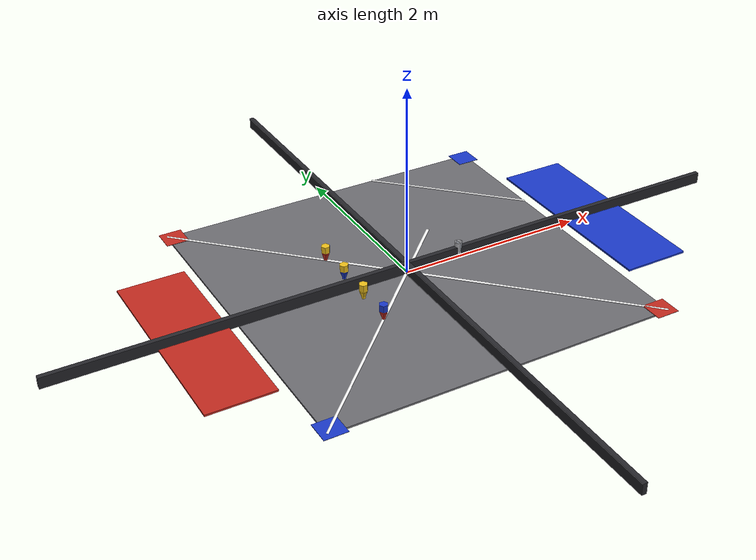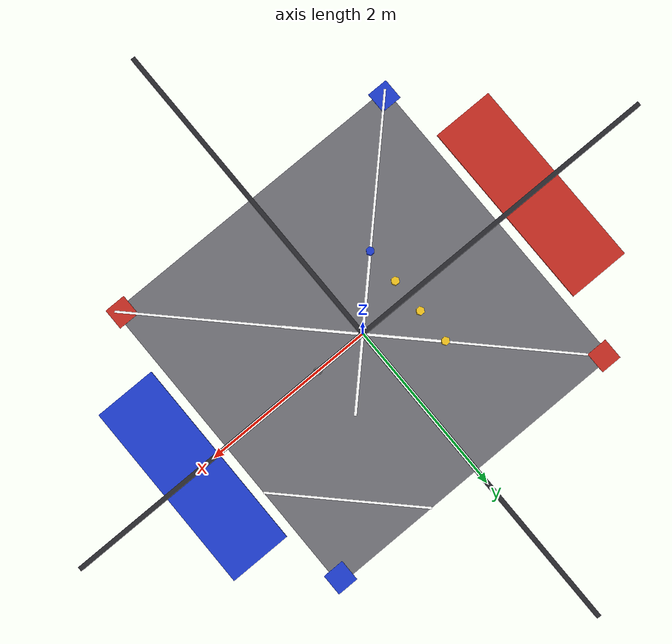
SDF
<?xml version="1.0" ?>
<sdf version="1.7">
  <world name="block_test">
    <scene>
      <ambient>0.45 0.45 0.5 1</ambient>
      <background>0.2 0.2 0.25 1</background>
      <shadows>true</shadows>
    </scene>
    <light name="sun" type="directional">
      <pose>0 0 3 0 0 0</pose>
      <diffuse>0.9 0.9 0.9 1</diffuse>
      <specular>0.2 0.2 0.2 1</specular>
      <direction>-0.5 0.1 -1</direction>
    </light>

    <include>
      <uri>model://override-field</uri>
      <pose>0 0 0 0 0 0</pose>
    </include>

    <!-- one of each scoring element -->
    <include>
      <name>pin_ry_1</name>
      <uri>model://pin-ry</uri>
      <pose>-0.6 0.6 0.01 0 0 0</pose>
    </include>
    <include>
      <name>pin_by_1</name>
      <uri>model://pin-by</uri>
      <pose>-0.6 0.2 0.01 0 0 0</pose>
    </include>
    <include>
      <name>pin_yy_1</name>
      <uri>model://pin-yy</uri>
      <pose>-0.6 -0.2 0.01 0 0 0</pose>
    </include>
    <include>
      <name>pin_rb_1</name>
      <uri>model://pin-rb</uri>
      <pose>-0.6 -0.6 0.01 0 0 0</pose>
    </include>
    <include>
      <name>cup_1</name>
      <uri>model://cup</uri>
      <pose>0.6 0.0 0.01 0 0 0</pose>
    </include>
  </world>
</sdf>

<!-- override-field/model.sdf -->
<sdf version="1.7">
  <model name="override-field">
    <static>true</static>
    <link name="body">
      <pose>0 0 0 0 0 0</pose>
            <visual name="v_0_0">
        <pose>0 0 -0.01 0.0 0.0 0.0</pose>
        <geometry><box><size>3.6576 3.6576 0.02</size></box></geometry>
        <material>
        <ambient>0.42 0.42 0.44 1</ambient>
        <diffuse>0.42 0.42 0.44 1</diffuse>
        <specular>0.1 0.1 0.1 1.0</specular>
        <emissive>0 0 0 1</emissive>
      </material>
      </visual>
      <collision name="c_0_0">
        <pose>0 0 -0.01 0.0 0.0 0.0</pose>
        <geometry><box><size>3.6576 3.6576 0.02</size></box></geometry>
        <surface><friction><ode><mu>0.8</mu><mu2>0.8</mu2></ode></friction></surface>
      </collision>

      <visual name="v_-1.8538_0">
        <pose>-1.8538 0 0.06 0.0 0.0 0.0</pose>
        <geometry><box><size>3.7576 0.05 0.12</size></box></geometry>
        <material>
        <ambient>0.15 0.15 0.17 1</ambient>
        <diffuse>0.15 0.15 0.17 1</diffuse>
        <specular>0.1 0.1 0.1 1.0</specular>
        <emissive>0 0 0 1</emissive>
      </material>
      </visual>
      <collision name="c_-1.8538_0">
        <pose>-1.8538 0 0.06 0.0 0.0 0.0</pose>
        <geometry><box><size>3.7576 0.05 0.12</size></box></geometry>
        <surface><friction><ode><mu>0.8</mu><mu2>0.8</mu2></ode></friction></surface>
      </collision>

      <visual name="v_0_-1.8538">
        <pose>0 -1.8538 0.06 0.0 0.0 0.0</pose>
        <geometry><box><size>0.05 3.7576 0.12</size></box></geometry>
        <material>
        <ambient>0.15 0.15 0.17 1</ambient>
        <diffuse>0.15 0.15 0.17 1</diffuse>
        <specular>0.1 0.1 0.1 1.0</specular>
        <emissive>0 0 0 1</emissive>
      </material>
      </visual>
      <collision name="c_0_-1.8538">
        <pose>0 -1.8538 0.06 0.0 0.0 0.0</pose>
        <geometry><box><size>0.05 3.7576 0.12</size></box></geometry>
        <surface><friction><ode><mu>0.8</mu><mu2>0.8</mu2></ode></friction></surface>
      </collision>

      <visual name="v_1.8538_0">
        <pose>1.8538 0 0.06 0.0 0.0 0.0</pose>
        <geometry><box><size>3.7576 0.05 0.12</size></box></geometry>
        <material>
        <ambient>0.15 0.15 0.17 1</ambient>
        <diffuse>0.15 0.15 0.17 1</diffuse>
        <specular>0.1 0.1 0.1 1.0</specular>
        <emissive>0 0 0 1</emissive>
      </material>
      </visual>
      <collision name="c_1.8538_0">
        <pose>1.8538 0 0.06 0.0 0.0 0.0</pose>
        <geometry><box><size>3.7576 0.05 0.12</size></box></geometry>
        <surface><friction><ode><mu>0.8</mu><mu2>0.8</mu2></ode></friction></surface>
      </collision>

      <visual name="v_0_1.8538">
        <pose>0 1.8538 0.06 0.0 0.0 0.0</pose>
        <geometry><box><size>0.05 3.7576 0.12</size></box></geometry>
        <material>
        <ambient>0.15 0.15 0.17 1</ambient>
        <diffuse>0.15 0.15 0.17 1</diffuse>
        <specular>0.1 0.1 0.1 1.0</specular>
        <emissive>0 0 0 1</emissive>
      </material>
      </visual>
      <collision name="c_0_1.8538">
        <pose>0 1.8538 0.06 0.0 0.0 0.0</pose>
        <geometry><box><size>0.05 3.7576 0.12</size></box></geometry>
        <surface><friction><ode><mu>0.8</mu><mu2>0.8</mu2></ode></friction></surface>
      </collision>

      <visual name="v_-2.2788_0">
        <pose>-2.2788 0 0.01 0.0 0.0 0.0</pose>
        <geometry><box><size>0.7 2.2 0.02</size></box></geometry>
        <material>
        <ambient>0.75 0.16 0.12 1</ambient>
        <diffuse>0.75 0.16 0.12 1</diffuse>
        <specular>0.1 0.1 0.1 1.0</specular>
        <emissive>0 0 0 1</emissive>
      </material>
      </visual>
      <collision name="c_-2.2788_0">
        <pose>-2.2788 0 0.01 0.0 0.0 0.0</pose>
        <geometry><box><size>0.7 2.2 0.02</size></box></geometry>
        <surface><friction><ode><mu>0.8</mu><mu2>0.8</mu2></ode></friction></surface>
      </collision>

      <visual name="v_2.2788_0">
        <pose>2.2788 0 0.01 0.0 0.0 0.0</pose>
        <geometry><box><size>0.7 2.2 0.02</size></box></geometry>
        <material>
        <ambient>0.1 0.22 0.78 1</ambient>
        <diffuse>0.1 0.22 0.78 1</diffuse>
        <specular>0.1 0.1 0.1 1.0</specular>
        <emissive>0 0 0 1</emissive>
      </material>
      </visual>
      <collision name="c_2.2788_0">
        <pose>2.2788 0 0.01 0.0 0.0 0.0</pose>
        <geometry><box><size>0.7 2.2 0.02</size></box></geometry>
        <surface><friction><ode><mu>0.8</mu><mu2>0.8</mu2></ode></friction></surface>
      </collision>

      <visual name="tape_0.3_0.3">
        <pose>0.3 0.3 0.005 0 0 0.7854</pose>
        <geometry><box><size>0.848528137423857 0.03 0.005</size></box></geometry>
        <material>
        <ambient>0.96 0.96 0.96 1</ambient>
        <diffuse>0.96 0.96 0.96 1</diffuse>
        <specular>0.1 0.1 0.1 1.0</specular>
        <emissive>0.05 0.05 0.05 1</emissive>
      </material>
      </visual>

      <visual name="tape_-0.3_0.3">
        <pose>-0.3 0.3 0.005 0 0 -0.7854</pose>
        <geometry><box><size>0.848528137423857 0.03 0.005</size></box></geometry>
        <material>
        <ambient>0.96 0.96 0.96 1</ambient>
        <diffuse>0.96 0.96 0.96 1</diffuse>
        <specular>0.1 0.1 0.1 1.0</specular>
        <emissive>0.05 0.05 0.05 1</emissive>
      </material>
      </visual>

      <visual name="tape_-0.3_-0.3">
        <pose>-0.3 -0.3 0.005 0 0 0.7854</pose>
        <geometry><box><size>0.848528137423857 0.03 0.005</size></box></geometry>
        <material>
        <ambient>0.96 0.96 0.96 1</ambient>
        <diffuse>0.96 0.96 0.96 1</diffuse>
        <specular>0.1 0.1 0.1 1.0</specular>
        <emissive>0.05 0.05 0.05 1</emissive>
      </material>
      </visual>

      <visual name="tape_0.3_-0.3">
        <pose>0.3 -0.3 0.005 0 0 -0.7854</pose>
        <geometry><box><size>0.848528137423857 0.03 0.005</size></box></geometry>
        <material>
        <ambient>0.96 0.96 0.96 1</ambient>
        <diffuse>0.96 0.96 0.96 1</diffuse>
        <specular>0.1 0.1 0.1 1.0</specular>
        <emissive>0.05 0.05 0.05 1</emissive>
      </material>
      </visual>

      <visual name="tape_-1.2144_1.2144">
        <pose>-1.2144 1.2144 0.005 0 0 -0.7854</pose>
        <geometry><box><size>1.7377856254440596 0.025 0.005</size></box></geometry>
        <material>
        <ambient>0.96 0.96 0.96 1</ambient>
        <diffuse>0.96 0.96 0.96 1</diffuse>
        <specular>0.1 0.1 0.1 1.0</specular>
        <emissive>0.05 0.05 0.05 1</emissive>
      </material>
      </visual>

      <visual name="tape_1.2144_1.2144">
        <pose>1.2144 1.2144 0.005 0 0 2.3562</pose>
        <geometry><box><size>1.7377856254440596 0.025 0.005</size></box></geometry>
        <material>
        <ambient>0.96 0.96 0.96 1</ambient>
        <diffuse>0.96 0.96 0.96 1</diffuse>
        <specular>0.1 0.1 0.1 1.0</specular>
        <emissive>0.05 0.05 0.05 1</emissive>
      </material>
      </visual>

      <visual name="tape_-1.2144_-1.2144">
        <pose>-1.2144 -1.2144 0.005 0 0 0.7854</pose>
        <geometry><box><size>1.7377856254440596 0.025 0.005</size></box></geometry>
        <material>
        <ambient>0.96 0.96 0.96 1</ambient>
        <diffuse>0.96 0.96 0.96 1</diffuse>
        <specular>0.1 0.1 0.1 1.0</specular>
        <emissive>0.05 0.05 0.05 1</emissive>
      </material>
      </visual>

      <visual name="tape_1.2144_-1.2144">
        <pose>1.2144 -1.2144 0.005 0 0 2.3562</pose>
        <geometry><box><size>1.7377856254440596 0.025 0.005</size></box></geometry>
        <material>
        <ambient>0.96 0.96 0.96 1</ambient>
        <diffuse>0.96 0.96 0.96 1</diffuse>
        <specular>0.1 0.1 0.1 1.0</specular>
        <emissive>0.05 0.05 0.05 1</emissive>
      </material>
      </visual>

      <visual name="tape_1.773936_1.773936">
        <pose>1.773936 1.773936 0.005 0 0 0.0</pose>
        <geometry><box><size>0.24 0.24 0.005</size></box></geometry>
        <material>
        <ambient>0.1 0.22 0.78 1</ambient>
        <diffuse>0.1 0.22 0.78 1</diffuse>
        <specular>0.1 0.1 0.1 1.0</specular>
        <emissive>0 0 0 1</emissive>
      </material>
      </visual>

      <visual name="tape_1.773936_-1.773936">
        <pose>1.773936 -1.773936 0.005 0 0 0.0</pose>
        <geometry><box><size>0.24 0.24 0.005</size></box></geometry>
        <material>
        <ambient>0.75 0.16 0.12 1</ambient>
        <diffuse>0.75 0.16 0.12 1</diffuse>
        <specular>0.1 0.1 0.1 1.0</specular>
        <emissive>0 0 0 1</emissive>
      </material>
      </visual>

      <visual name="tape_-1.773936_-1.773936">
        <pose>-1.773936 -1.773936 0.005 0 0 0.0</pose>
        <geometry><box><size>0.24 0.24 0.005</size></box></geometry>
        <material>
        <ambient>0.1 0.22 0.78 1</ambient>
        <diffuse>0.1 0.22 0.78 1</diffuse>
        <specular>0.1 0.1 0.1 1.0</specular>
        <emissive>0 0 0 1</emissive>
      </material>
      </visual>

      <visual name="tape_-1.773936_1.773936">
        <pose>-1.773936 1.773936 0.005 0 0 0.0</pose>
        <geometry><box><size>0.24 0.24 0.005</size></box></geometry>
        <material>
        <ambient>0.75 0.16 0.12 1</ambient>
        <diffuse>0.75 0.16 0.12 1</diffuse>
        <specular>0.1 0.1 0.1 1.0</specular>
        <emissive>0 0 0 1</emissive>
      </material>
      </visual>

    </link>
  </model>
</sdf>

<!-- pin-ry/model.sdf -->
<sdf version="1.7">
  <model name="pin-ry">
    <static>false</static>
    <link name="link">
      <pose>0 0 0 0 0 0</pose>
      <velocity_decay>
        <linear>0.4</linear>
      </velocity_decay>
      <inertial>
        <pose>0 0 0.0825 0 0 0</pose>
        <mass>0.073</mass>
        <inertia>
          <ixx>0.000206</ixx>
          <iyy>0.000206</iyy>
          <izz>0.000081</izz>
        </inertia>
      </inertial>
      <visual name="bottom_half">
        <geometry>
          <mesh>
            <uri>model://pin-ry/meshes/pin-bottom.stl</uri>
          </mesh>
        </geometry>
        <material>
        <ambient>0.75 0.16 0.12 1</ambient>
        <diffuse>0.75 0.16 0.12 1</diffuse>
        <specular>0.1 0.1 0.1 1.0</specular>
        <emissive>0 0 0 1</emissive>
      </material>
      </visual>
      <visual name="top_half">
        <pose>0 0 0.0907 0 0 0</pose>
        <geometry>
          <mesh>
            <uri>model://pin-ry/meshes/pin-top.stl</uri>
          </mesh>
        </geometry>
        <material>
        <ambient>0.92 0.74 0.1 1</ambient>
        <diffuse>0.92 0.74 0.1 1</diffuse>
        <specular>0.1 0.1 0.1 1.0</specular>
        <emissive>0 0 0 1</emissive>
      </material>
      </visual>
      <collision name="collision">
        <pose>0 0 0.0825 0 0 0</pose>
        <geometry>
          <cylinder>
            <radius>0.047</radius>
            <length>0.165</length>
          </cylinder>
        </geometry>
        <surface>
          <friction>
            <ode>
              <mu>0.6</mu>
              <mu2>0.6</mu2>
            </ode>
          </friction>
        </surface>
      </collision>
    </link>
    <plugin filename="gz-sim-pose-publisher-system" name="gz::sim::systems::PosePublisher">
      <publish_link_pose>false</publish_link_pose>
      <publish_visual_pose>false</publish_visual_pose>
      <publish_collision_pose>false</publish_collision_pose>
      <publish_sensor_pose>false</publish_sensor_pose>
      <publish_model_pose>true</publish_model_pose>
      <publish_nested_model_pose>true</publish_nested_model_pose>
      <use_pose_vector_msg>false</use_pose_vector_msg>
      <update_frequency>20</update_frequency>
      <static_publisher>false</static_publisher>
      <static_update_frequency>1</static_update_frequency>
    </plugin>
    <plugin filename="rollingFriction" name="rolling_friction::RollingFrictionPlugin">
      <link_name>link</link_name>
      <coefficient>0.01</coefficient>
    </plugin>
  </model>
</sdf>

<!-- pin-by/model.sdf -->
<sdf version="1.7">
  <model name="pin-by">
    <static>false</static>
    <link name="link">
      <pose>0 0 0 0 0 0</pose>
      <velocity_decay>
        <linear>0.4</linear>
      </velocity_decay>
      <inertial>
        <pose>0 0 0.0825 0 0 0</pose>
        <mass>0.073</mass>
        <inertia>
          <ixx>0.000206</ixx>
          <iyy>0.000206</iyy>
          <izz>0.000081</izz>
        </inertia>
      </inertial>
      <visual name="bottom_half">
        <geometry>
          <mesh>
            <uri>model://pin-by/meshes/pin-bottom.stl</uri>
          </mesh>
        </geometry>
        <material>
        <ambient>0.1 0.22 0.78 1</ambient>
        <diffuse>0.1 0.22 0.78 1</diffuse>
        <specular>0.1 0.1 0.1 1.0</specular>
        <emissive>0 0 0 1</emissive>
      </material>
      </visual>
      <visual name="top_half">
        <pose>0 0 0.0907 0 0 0</pose>
        <geometry>
          <mesh>
            <uri>model://pin-by/meshes/pin-top.stl</uri>
          </mesh>
        </geometry>
        <material>
        <ambient>0.92 0.74 0.1 1</ambient>
        <diffuse>0.92 0.74 0.1 1</diffuse>
        <specular>0.1 0.1 0.1 1.0</specular>
        <emissive>0 0 0 1</emissive>
      </material>
      </visual>
      <collision name="collision">
        <pose>0 0 0.0825 0 0 0</pose>
        <geometry>
          <cylinder>
            <radius>0.047</radius>
            <length>0.165</length>
          </cylinder>
        </geometry>
        <surface>
          <friction>
            <ode>
              <mu>0.6</mu>
              <mu2>0.6</mu2>
            </ode>
          </friction>
        </surface>
      </collision>
    </link>
    <plugin filename="gz-sim-pose-publisher-system" name="gz::sim::systems::PosePublisher">
      <publish_link_pose>false</publish_link_pose>
      <publish_visual_pose>false</publish_visual_pose>
      <publish_collision_pose>false</publish_collision_pose>
      <publish_sensor_pose>false</publish_sensor_pose>
      <publish_model_pose>true</publish_model_pose>
      <publish_nested_model_pose>true</publish_nested_model_pose>
      <use_pose_vector_msg>false</use_pose_vector_msg>
      <update_frequency>20</update_frequency>
      <static_publisher>false</static_publisher>
      <static_update_frequency>1</static_update_frequency>
    </plugin>
    <plugin filename="rollingFriction" name="rolling_friction::RollingFrictionPlugin">
      <link_name>link</link_name>
      <coefficient>0.01</coefficient>
    </plugin>
  </model>
</sdf>

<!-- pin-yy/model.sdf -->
<sdf version="1.7">
  <model name="pin-yy">
    <static>false</static>
    <link name="link">
      <pose>0 0 0 0 0 0</pose>
      <velocity_decay>
        <linear>0.4</linear>
      </velocity_decay>
      <inertial>
        <pose>0 0 0.0825 0 0 0</pose>
        <mass>0.073</mass>
        <inertia>
          <ixx>0.000206</ixx>
          <iyy>0.000206</iyy>
          <izz>0.000081</izz>
        </inertia>
      </inertial>
      <visual name="bottom_half">
        <geometry>
          <mesh>
            <uri>model://pin-yy/meshes/pin-bottom.stl</uri>
          </mesh>
        </geometry>
        <material>
        <ambient>0.92 0.74 0.1 1</ambient>
        <diffuse>0.92 0.74 0.1 1</diffuse>
        <specular>0.1 0.1 0.1 1.0</specular>
        <emissive>0 0 0 1</emissive>
      </material>
      </visual>
      <visual name="top_half">
        <pose>0 0 0.0907 0 0 0</pose>
        <geometry>
          <mesh>
            <uri>model://pin-yy/meshes/pin-top.stl</uri>
          </mesh>
        </geometry>
        <material>
        <ambient>0.92 0.74 0.1 1</ambient>
        <diffuse>0.92 0.74 0.1 1</diffuse>
        <specular>0.1 0.1 0.1 1.0</specular>
        <emissive>0 0 0 1</emissive>
      </material>
      </visual>
      <collision name="collision">
        <pose>0 0 0.0825 0 0 0</pose>
        <geometry>
          <cylinder>
            <radius>0.047</radius>
            <length>0.165</length>
          </cylinder>
        </geometry>
        <surface>
          <friction>
            <ode>
              <mu>0.6</mu>
              <mu2>0.6</mu2>
            </ode>
          </friction>
        </surface>
      </collision>
    </link>
    <plugin filename="gz-sim-pose-publisher-system" name="gz::sim::systems::PosePublisher">
      <publish_link_pose>false</publish_link_pose>
      <publish_visual_pose>false</publish_visual_pose>
      <publish_collision_pose>false</publish_collision_pose>
      <publish_sensor_pose>false</publish_sensor_pose>
      <publish_model_pose>true</publish_model_pose>
      <publish_nested_model_pose>true</publish_nested_model_pose>
      <use_pose_vector_msg>false</use_pose_vector_msg>
      <update_frequency>20</update_frequency>
      <static_publisher>false</static_publisher>
      <static_update_frequency>1</static_update_frequency>
    </plugin>
    <plugin filename="rollingFriction" name="rolling_friction::RollingFrictionPlugin">
      <link_name>link</link_name>
      <coefficient>0.01</coefficient>
    </plugin>
  </model>
</sdf>

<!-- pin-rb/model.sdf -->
<sdf version="1.7">
  <model name="pin-rb">
    <static>false</static>
    <link name="link">
      <pose>0 0 0 0 0 0</pose>
      <velocity_decay>
        <linear>0.4</linear>
      </velocity_decay>
      <inertial>
        <pose>0 0 0.0825 0 0 0</pose>
        <mass>0.073</mass>
        <inertia>
          <ixx>0.000206</ixx>
          <iyy>0.000206</iyy>
          <izz>0.000081</izz>
        </inertia>
      </inertial>
      <visual name="bottom_half">
        <geometry>
          <mesh>
            <uri>model://pin-rb/meshes/pin-bottom.stl</uri>
          </mesh>
        </geometry>
        <material>
        <ambient>0.75 0.16 0.12 1</ambient>
        <diffuse>0.75 0.16 0.12 1</diffuse>
        <specular>0.1 0.1 0.1 1.0</specular>
        <emissive>0 0 0 1</emissive>
      </material>
      </visual>
      <visual name="top_half">
        <pose>0 0 0.0907 0 0 0</pose>
        <geometry>
          <mesh>
            <uri>model://pin-rb/meshes/pin-top.stl</uri>
          </mesh>
        </geometry>
        <material>
        <ambient>0.1 0.22 0.78 1</ambient>
        <diffuse>0.1 0.22 0.78 1</diffuse>
        <specular>0.1 0.1 0.1 1.0</specular>
        <emissive>0 0 0 1</emissive>
      </material>
      </visual>
      <collision name="collision">
        <pose>0 0 0.0825 0 0 0</pose>
        <geometry>
          <cylinder>
            <radius>0.047</radius>
            <length>0.165</length>
          </cylinder>
        </geometry>
        <surface>
          <friction>
            <ode>
              <mu>0.6</mu>
              <mu2>0.6</mu2>
            </ode>
          </friction>
        </surface>
      </collision>
    </link>
    <plugin filename="gz-sim-pose-publisher-system" name="gz::sim::systems::PosePublisher">
      <publish_link_pose>false</publish_link_pose>
      <publish_visual_pose>false</publish_visual_pose>
      <publish_collision_pose>false</publish_collision_pose>
      <publish_sensor_pose>false</publish_sensor_pose>
      <publish_model_pose>true</publish_model_pose>
      <publish_nested_model_pose>true</publish_nested_model_pose>
      <use_pose_vector_msg>false</use_pose_vector_msg>
      <update_frequency>20</update_frequency>
      <static_publisher>false</static_publisher>
      <static_update_frequency>1</static_update_frequency>
    </plugin>
    <plugin filename="rollingFriction" name="rolling_friction::RollingFrictionPlugin">
      <link_name>link</link_name>
      <coefficient>0.01</coefficient>
    </plugin>
  </model>
</sdf>

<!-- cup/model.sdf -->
<sdf version="1.7">
  <model name="cup">
    <static>false</static>
    <link name="link">
      <pose>0 0 0 0 0 0</pose>
      <velocity_decay>
        <linear>0.4</linear>
      </velocity_decay>
      <inertial>
        <pose>0 0 0.08225 0 0 0</pose>
        <mass>0.078</mass>
        <inertia>
          <ixx>0.000235</ixx>
          <iyy>0.000235</iyy>
          <izz>0.000066</izz>
        </inertia>
      </inertial>
      <visual name="body">
        <geometry>
          <mesh>
            <uri>model://cup/meshes/cup.stl</uri>
          </mesh>
        </geometry>
        <material>
        <ambient>0.72 0.72 0.74 1</ambient>
        <diffuse>0.72 0.72 0.74 1</diffuse>
        <specular>0.1 0.1 0.1 1.0</specular>
        <emissive>0 0 0 1</emissive>
      </material>
      </visual>
      <visual name="clear_window">
        <geometry>
          <mesh>
            <uri>model://cup/meshes/cup-window.stl</uri>
          </mesh>
        </geometry>
        <material>
          <ambient>0.85 0.92 1.0 0.4</ambient>
          <diffuse>0.85 0.92 1.0 0.4</diffuse>
          <specular>0.8 0.8 0.8 1.0</specular>
          <emissive>0 0 0 1</emissive>
        </material>
        <transparency>0.65</transparency>
        <cast_shadows>false</cast_shadows>
      </visual>
      <collision name="collision">
        <pose>0 0 0.08225 0 0 0</pose>
        <geometry>
          <cylinder>
            <radius>0.041</radius>
            <length>0.1645</length>
          </cylinder>
        </geometry>
        <surface>
          <friction>
            <ode>
              <mu>0.6</mu>
              <mu2>0.6</mu2>
            </ode>
          </friction>
        </surface>
      </collision>
    </link>
    <plugin filename="gz-sim-pose-publisher-system" name="gz::sim::systems::PosePublisher">
      <publish_link_pose>false</publish_link_pose>
      <publish_visual_pose>false</publish_visual_pose>
      <publish_collision_pose>false</publish_collision_pose>
      <publish_sensor_pose>false</publish_sensor_pose>
      <publish_model_pose>true</publish_model_pose>
      <publish_nested_model_pose>true</publish_nested_model_pose>
      <use_pose_vector_msg>false</use_pose_vector_msg>
      <update_frequency>20</update_frequency>
      <static_publisher>false</static_publisher>
      <static_update_frequency>1</static_update_frequency>
    </plugin>
    <plugin filename="rollingFriction" name="rolling_friction::RollingFrictionPlugin">
      <link_name>link</link_name>
      <coefficient>0.01</coefficient>
    </plugin>
  </model>
</sdf>
